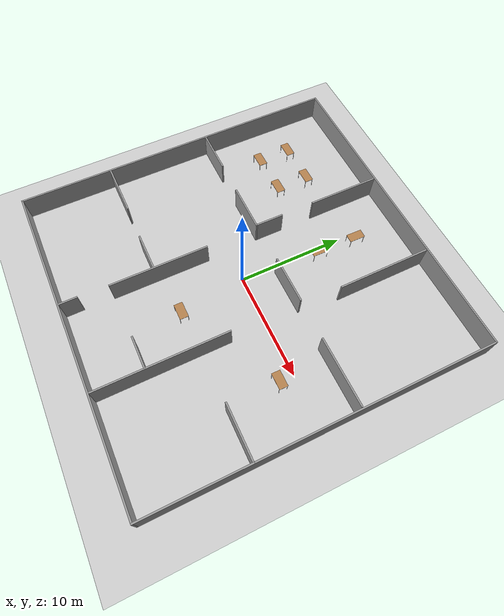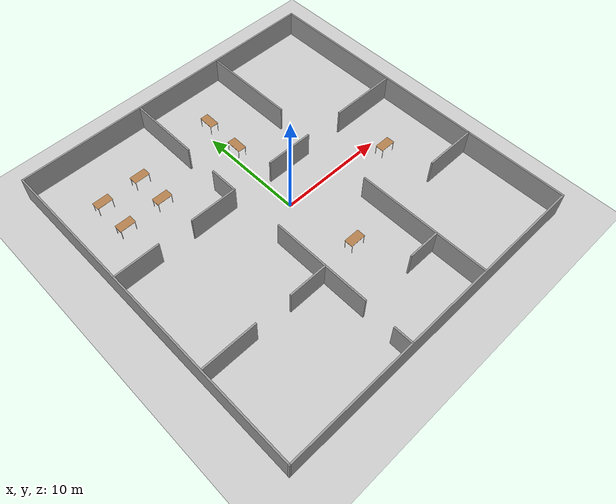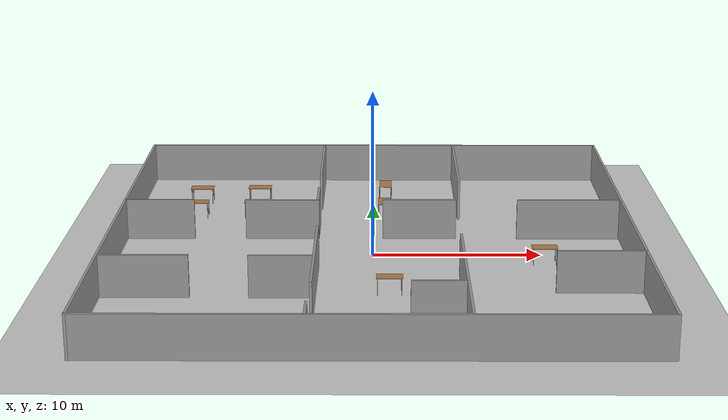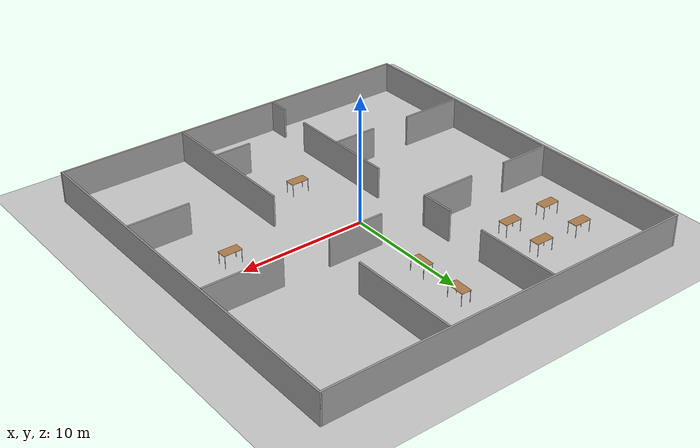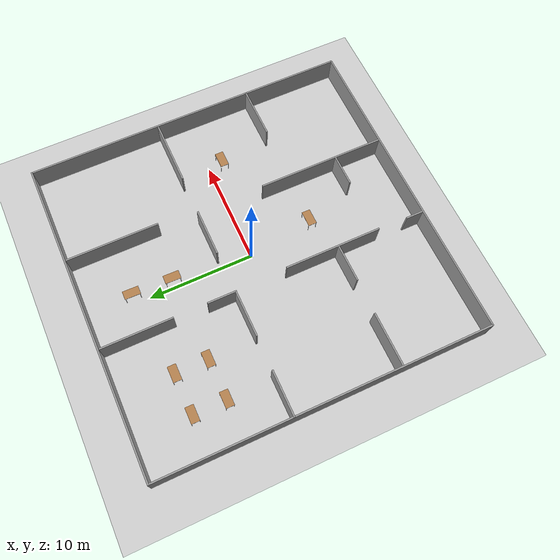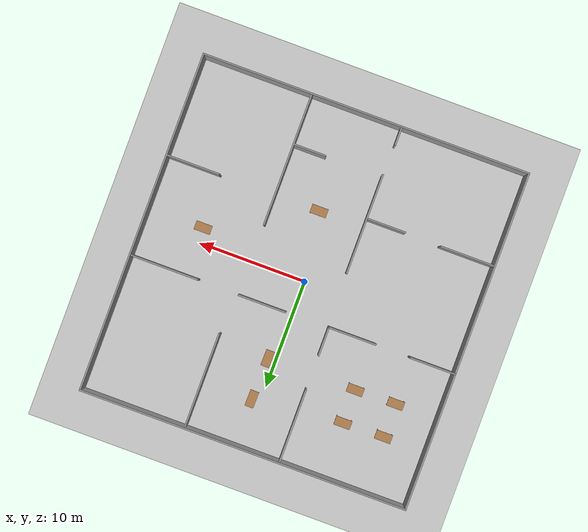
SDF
<sdf version="1.7">
 <world name="default">
  <light name="sun" type="directional">
   <pose>0 0 10 0 -0 0</pose>
   <diffuse>0.8 0.8 0.8 1</diffuse>
   <specular>0.2 0.2 0.2 1</specular>
   <attenuation>
    <range>1000</range>
    <constant>0.9</constant>
    <linear>0.01</linear>
    <quadratic>0.001</quadratic>
   </attenuation>
   <direction>-0.5 0.1 -0.9</direction>
   <spot><inner_angle>0</inner_angle><outer_angle>0</outer_angle><falloff>0</falloff></spot>
  </light>
  <model name="ground_plane">
   <static>1</static>
   <link name="link">
    <collision name="collision">
     <geometry><plane><normal>0 0 1</normal><size>100 100</size></plane></geometry>
     <surface>
      <contact><collide_bitmask>65535</collide_bitmask></contact>
      <friction><ode><mu>100</mu><mu2>50</mu2></ode></friction>
     </surface>
    </collision>
    <visual name="visual">
     <cast_shadows>0</cast_shadows>
     <geometry><plane><normal>0 0 1</normal><size>100 100</size></plane></geometry>
     <material>
      <script><uri>file://media/materials/scripts/gazebo.material</uri><name>Gazebo/Grey</name></script>
     </material>
    </visual>
   </link>
  </model>
  <gravity>0 0 -9.8</gravity>
  <magnetic_field>6e-06 2.3e-05 -4.2e-05</magnetic_field>
  <atmosphere type="adiabatic"/>
  <physics type="ode">
   <max_step_size>0.001</max_step_size>
   <real_time_factor>1</real_time_factor>
   <real_time_update_rate>1000</real_time_update_rate>
  </physics>
  <scene><ambient>0.4 0.4 0.4 1</ambient><background>0.7 0.7 0.7 1</background><shadows>1</shadows></scene>
  <audio><device>default</device></audio>
  <spherical_coordinates>
   <surface_model>EARTH_WGS84</surface_model>
   <latitude_deg>0</latitude_deg>
   <longitude_deg>0</longitude_deg>
   <elevation>0</elevation>
   <heading_deg>0</heading_deg>
  </spherical_coordinates>
  <model name="study">
   <link name="Wall_0">
    <collision name="Wall_0_Collision">
     <geometry><box><size>30.5 0.15 2.5</size></box></geometry>
     <pose>0 0 1.25 0 -0 0</pose>
    </collision>
    <visual name="Wall_0_Visual">
     <pose>0 0 1.25 0 -0 0</pose>
     <geometry><box><size>30.5 0.15 2.5</size></box></geometry>
     <material>
      <script><uri>file://media/materials/scripts/gazebo.material</uri><name>Gazebo/Grey</name></script>
      <ambient>1 1 1 1</ambient>
     </material>
     <meta><layer>0</layer></meta>
    </visual>
    <pose>0 15.675 0 0 -0 0</pose>
   </link>
   <link name="Wall_1">
    <collision name="Wall_1_Collision">
     <geometry><box><size>31.5 0.15 2.5</size></box></geometry>
     <pose>0 0 1.25 0 -0 0</pose>
    </collision>
    <visual name="Wall_1_Visual">
     <pose>0 0 1.25 0 -0 0</pose>
     <geometry><box><size>31.5 0.15 2.5</size></box></geometry>
     <material>
      <script><uri>file://media/materials/scripts/gazebo.material</uri><name>Gazebo/Grey</name></script>
      <ambient>1 1 1 1</ambient>
     </material>
     <meta><layer>0</layer></meta>
    </visual>
    <pose>15.175 -0 0 0 -0 -1.5708</pose>
   </link>
   <link name="Wall_10">
    <collision name="Wall_10_Collision">
     <geometry><box><size>4.25 0.15 2.5</size></box></geometry>
     <pose>0 0 1.25 0 -0 0</pose>
    </collision>
    <visual name="Wall_10_Visual">
     <pose>0 0 1.25 0 -0 0</pose>
     <geometry><box><size>4.25 0.15 2.5</size></box></geometry>
     <material>
      <script><uri>file://media/materials/scripts/gazebo.material</uri><name>Gazebo/Grey</name></script>
      <ambient>1 1 1 1</ambient>
     </material>
     <meta><layer>0</layer></meta>
    </visual>
    <pose>-13.0898 3.04582 0 0 -0 0</pose>
   </link>
   <link name="Wall_12">
    <collision name="Wall_12_Collision">
     <geometry><box><size>4.5 0.15 2.5</size></box></geometry>
     <pose>0 0 1.25 0 -0 0</pose>
    </collision>
    <visual name="Wall_12_Visual">
     <pose>0 0 1.25 0 -0 0</pose>
     <geometry><box><size>4.5 0.15 2.5</size></box></geometry>
     <material>
      <script><uri>file://media/materials/scripts/gazebo.material</uri><name>Gazebo/Grey</name></script>
      <ambient>1 1 1 1</ambient>
     </material>
     <meta><layer>0</layer></meta>
    </visual>
    <pose>2.83044 3.081 0 0 -0 0</pose>
   </link>
   <link name="Wall_14">
    <collision name="Wall_14_Collision">
     <geometry><box><size>6.25 0.15 2.5</size></box></geometry>
     <pose>0 0 1.25 0 -0 0</pose>
    </collision>
    <visual name="Wall_14_Visual">
     <pose>0 0 1.25 0 -0 0</pose>
     <geometry><box><size>6.25 0.15 2.5</size></box></geometry>
     <material>
      <script><uri>file://media/materials/scripts/gazebo.material</uri><name>Gazebo/Grey</name></script>
      <ambient>1 1 1 1</ambient>
     </material>
     <meta><layer>0</layer></meta>
    </visual>
    <pose>11.9373 3.04582 0 0 -0 0</pose>
   </link>
   <link name="Wall_16">
    <collision name="Wall_16_Collision">
     <geometry><box><size>5 0.15 2.5</size></box></geometry>
     <pose>0 0 1.25 0 -0 0</pose>
    </collision>
    <visual name="Wall_16_Visual">
     <pose>0 0 1.25 0 -0 0</pose>
     <geometry><box><size>5 0.15 2.5</size></box></geometry>
     <material>
      <script><uri>file://media/materials/scripts/gazebo.material</uri><name>Gazebo/Grey</name></script>
      <ambient>1 1 1 1</ambient>
     </material>
     <meta><layer>0</layer></meta>
    </visual>
    <pose>-12.6093 -7.0153 0 0 -0 0</pose>
   </link>
   <link name="Wall_18">
    <collision name="Wall_18_Collision">
     <geometry><box><size>3.604 0.15 2.5</size></box></geometry>
     <pose>0 0 1.25 0 -0 0</pose>
    </collision>
    <visual name="Wall_18_Visual">
     <pose>0 0 1.25 0 -0 0</pose>
     <geometry><box><size>3.604 0.15 2.5</size></box></geometry>
     <material>
      <script><uri>file://media/materials/scripts/gazebo.material</uri><name>Gazebo/Grey</name></script>
      <ambient>1 1 1 1</ambient>
     </material>
     <meta><layer>0</layer></meta>
    </visual>
    <pose>-5.04028 -7.08345 0 0 -0 0.001282</pose>
   </link>
   <link name="Wall_2">
    <collision name="Wall_2_Collision">
     <geometry><box><size>30.5 0.15 2.5</size></box></geometry>
     <pose>0 0 1.25 0 -0 0</pose>
    </collision>
    <visual name="Wall_2_Visual">
     <pose>0 0 1.25 0 -0 0</pose>
     <geometry><box><size>30.5 0.15 2.5</size></box></geometry>
     <material>
      <script><uri>file://media/materials/scripts/gazebo.material</uri><name>Gazebo/Grey</name></script>
      <ambient>1 1 1 1</ambient>
     </material>
     <meta><layer>0</layer></meta>
    </visual>
    <pose>0 -15.675 0 0 -0 3.14159</pose>
   </link>
   <link name="Wall_20">
    <collision name="Wall_20_Collision">
     <geometry><box><size>9.25 0.15 2.5</size></box></geometry>
     <pose>0 0 1.25 0 -0 0</pose>
    </collision>
    <visual name="Wall_20_Visual">
     <pose>0 0 1.25 0 -0 0</pose>
     <geometry><box><size>9.25 0.15 2.5</size></box></geometry>
     <material>
      <script><uri>file://media/materials/scripts/gazebo.material</uri><name>Gazebo/Grey</name></script>
      <ambient>1 1 1 1</ambient>
     </material>
     <meta><layer>0</layer></meta>
    </visual>
    <pose>-3.21422 -6.56992 0 0 -0 -1.5708</pose>
   </link>
   <link name="Wall_25">
    <collision name="Wall_25_Collision">
     <geometry><box><size>1.75 0.15 2.5</size></box></geometry>
     <pose>0 0 1.25 0 -0 0</pose>
    </collision>
    <visual name="Wall_25_Visual">
     <pose>0 0 1.25 0 -0 0</pose>
     <geometry><box><size>1.75 0.15 2.5</size></box></geometry>
     <material>
      <script><uri>file://media/materials/scripts/gazebo.material</uri><name>Gazebo/Grey</name></script>
      <ambient>1 1 1 1</ambient>
     </material>
     <meta><layer>0</layer></meta>
    </visual>
    <pose>-3.32253 -14.8206 0 0 -0 1.5708</pose>
   </link>
   <link name="Wall_27">
    <collision name="Wall_27_Collision">
     <geometry><box><size>12.25 0.15 2.5</size></box></geometry>
     <pose>0 0 1.25 0 -0 0</pose>
    </collision>
    <visual name="Wall_27_Visual">
     <pose>0 0 1.25 0 -0 0</pose>
     <geometry><box><size>12.25 0.15 2.5</size></box></geometry>
     <material>
      <script><uri>file://media/materials/scripts/gazebo.material</uri><name>Gazebo/Grey</name></script>
      <ambient>1 1 1 1</ambient>
     </material>
     <meta><layer>0</layer></meta>
    </visual>
    <pose>5.05747 -9.53064 0 0 -0 1.5708</pose>
   </link>
   <link name="Wall_29">
    <collision name="Wall_29_Collision">
     <geometry><box><size>8.75 0.15 2.5</size></box></geometry>
     <pose>0 0 1.25 0 -0 0</pose>
    </collision>
    <visual name="Wall_29_Visual">
     <pose>0 0 1.25 0 -0 0</pose>
     <geometry><box><size>8.75 0.15 2.5</size></box></geometry>
     <material>
      <script><uri>file://media/materials/scripts/gazebo.material</uri><name>Gazebo/Grey</name></script>
      <ambient>1 1 1 1</ambient>
     </material>
     <meta><layer>0</layer></meta>
    </visual>
    <pose>5.43881 11.1887 0 0 -0 -1.5708</pose>
   </link>
   <link name="Wall_3">
    <collision name="Wall_3_Collision">
     <geometry><box><size>31.5 0.15 2.5</size></box></geometry>
     <pose>0 0 1.25 0 -0 0</pose>
    </collision>
    <visual name="Wall_3_Visual">
     <pose>0 0 1.25 0 -0 0</pose>
     <geometry><box><size>31.5 0.15 2.5</size></box></geometry>
     <material>
      <script><uri>file://media/materials/scripts/gazebo.material</uri><name>Gazebo/Grey</name></script>
      <ambient>1 1 1 1</ambient>
     </material>
     <meta><layer>0</layer></meta>
    </visual>
    <pose>-15.175 -0 0 0 -0 1.5708</pose>
   </link>
   <link name="Wall_31">
    <collision name="Wall_31_Collision">
     <geometry><box><size>5 0.15 2.5</size></box></geometry>
     <pose>0 0 1.25 0 -0 0</pose>
    </collision>
    <visual name="Wall_31_Visual">
     <pose>0 0 1.25 0 -0 0</pose>
     <geometry><box><size>5 0.15 2.5</size></box></geometry>
     <material>
      <script><uri>file://media/materials/scripts/gazebo.material</uri><name>Gazebo/Grey</name></script>
      <ambient>1 1 1 1</ambient>
     </material>
     <meta><layer>0</layer></meta>
    </visual>
    <pose>12.7212 -6.25406 0 0 -0 0</pose>
   </link>
   <link name="Wall_33">
    <collision name="Wall_33_Collision">
     <geometry><box><size>3 0.15 2.5</size></box></geometry>
     <pose>0 0 1.25 0 -0 0</pose>
    </collision>
    <visual name="Wall_33_Visual">
     <pose>0 0 1.25 0 -0 0</pose>
     <geometry><box><size>3 0.15 2.5</size></box></geometry>
     <material>
      <script><uri>file://media/materials/scripts/gazebo.material</uri><name>Gazebo/Grey</name></script>
      <ambient>1 1 1 1</ambient>
     </material>
     <meta><layer>0</layer></meta>
    </visual>
    <pose>3.533 -10.9727 0 0 -0 0</pose>
   </link>
   <link name="Wall_5">
    <collision name="Wall_5_Collision">
     <geometry><box><size>6.75 0.15 2.5</size></box></geometry>
     <pose>0 0 1.25 0 -0 0</pose>
    </collision>
    <visual name="Wall_5_Visual">
     <pose>0 0 1.25 0 -0 0</pose>
     <geometry><box><size>6.75 0.15 2.5</size></box></geometry>
     <material>
      <script><uri>file://media/materials/scripts/gazebo.material</uri><name>Gazebo/Grey</name></script>
      <ambient>1 1 1 1</ambient>
     </material>
     <meta><layer>0</layer></meta>
    </visual>
    <pose>-3.39011 12.1991 0 0 -0 -1.5708</pose>
   </link>
   <link name="Wall_7">
    <collision name="Wall_7_Collision">
     <geometry><box><size>2.75 0.15 2.5</size></box></geometry>
     <pose>0 0 1.25 0 -0 0</pose>
    </collision>
    <visual name="Wall_7_Visual">
     <pose>0 0 1.25 0 -0 0</pose>
     <geometry><box><size>2.75 0.15 2.5</size></box></geometry>
     <material>
      <script><uri>file://media/materials/scripts/gazebo.material</uri><name>Gazebo/Grey</name></script>
      <ambient>1 1 1 1</ambient>
     </material>
     <meta><layer>0</layer></meta>
    </visual>
    <pose>-3.39011 4.31387 0 0 -0 -1.5708</pose>
   </link>
   <link name="Wall_8">
    <collision name="Wall_8_Collision">
     <geometry><box><size>4.5 0.15 2.5</size></box></geometry>
     <pose>0 0 1.25 0 -0 0</pose>
    </collision>
    <visual name="Wall_8_Visual">
     <pose>0 0 1.25 0 -0 0</pose>
     <geometry><box><size>4.5 0.15 2.5</size></box></geometry>
     <material>
      <script><uri>file://media/materials/scripts/gazebo.material</uri><name>Gazebo/Grey</name></script>
      <ambient>1 1 1 1</ambient>
     </material>
     <meta><layer>0</layer></meta>
    </visual>
    <pose>-5.56511 3.01387 0 0 -0 3.14159</pose>
   </link>
   <static>1</static>
  </model>
  <model name="table">
   <static>1</static>
   <link name="link">
    <collision name="surface">
     <pose>0 0 1 0 -0 0</pose>
     <geometry><box><size>1.5 0.8 0.03</size></box></geometry>
     <surface><friction><ode><mu>0.6</mu><mu2>0.6</mu2></ode></friction></surface>
    </collision>
    <visual name="visual1">
     <pose>0 0 1 0 -0 0</pose>
     <geometry><box><size>1.5 0.8 0.03</size></box></geometry>
     <material>
      <script><uri>file://media/materials/scripts/gazebo.material</uri><name>Gazebo/Wood</name></script>
     </material>
    </visual>
    <collision name="front_left_leg">
     <pose>0.68 0.38 0.5 0 -0 0</pose>
     <geometry><cylinder><radius>0.02</radius><length>1</length></cylinder></geometry>
    </collision>
    <visual name="front_left_leg_visual">
     <pose>0.68 0.38 0.5 0 -0 0</pose>
     <geometry><cylinder><radius>0.02</radius><length>1</length></cylinder></geometry>
     <material>
      <script><uri>file://media/materials/scripts/gazebo.material</uri><name>Gazebo/Grey</name></script>
     </material>
    </visual>
    <collision name="front_right_leg">
     <pose>0.68 -0.38 0.5 0 -0 0</pose>
     <geometry><cylinder><radius>0.02</radius><length>1</length></cylinder></geometry>
    </collision>
    <visual name="front_right_leg_visual">
     <pose>0.68 -0.38 0.5 0 -0 0</pose>
     <geometry><cylinder><radius>0.02</radius><length>1</length></cylinder></geometry>
     <material>
      <script><uri>file://media/materials/scripts/gazebo.material</uri><name>Gazebo/Grey</name></script>
     </material>
    </visual>
    <collision name="back_right_leg">
     <pose>-0.68 -0.38 0.5 0 -0 0</pose>
     <geometry><cylinder><radius>0.02</radius><length>1</length></cylinder></geometry>
    </collision>
    <visual name="back_right_leg_visual">
     <pose>-0.68 -0.38 0.5 0 -0 0</pose>
     <geometry><cylinder><radius>0.02</radius><length>1</length></cylinder></geometry>
     <material>
      <script><uri>file://media/materials/scripts/gazebo.material</uri><name>Gazebo/Grey</name></script>
     </material>
    </visual>
    <collision name="back_left_leg">
     <pose>-0.68 0.38 0.5 0 -0 0</pose>
     <geometry><cylinder><radius>0.02</radius><length>1</length></cylinder></geometry>
    </collision>
    <visual name="back_left_leg_visual">
     <pose>-0.68 0.38 0.5 0 -0 0</pose>
     <geometry><cylinder><radius>0.02</radius><length>1</length></cylinder></geometry>
     <material>
      <script><uri>file://media/materials/scripts/gazebo.material</uri><name>Gazebo/Grey</name></script>
     </material>
    </visual>
   </link>
   <pose>-11.3135 10.4731 0 0 -0 0</pose>
  </model>
  <model name="table_0">
   <static>1</static>
   <link name="link">
    <collision name="surface">
     <pose>0 0 1 0 -0 0</pose>
     <geometry><box><size>1.5 0.8 0.03</size></box></geometry>
     <surface><friction><ode><mu>0.6</mu><mu2>0.6</mu2></ode></friction></surface>
    </collision>
    <visual name="visual1">
     <pose>0 0 1 0 -0 0</pose>
     <geometry><box><size>1.5 0.8 0.03</size></box></geometry>
     <material>
      <script><uri>file://media/materials/scripts/gazebo.material</uri><name>Gazebo/Wood</name></script>
     </material>
    </visual>
    <collision name="front_left_leg">
     <pose>0.68 0.38 0.5 0 -0 0</pose>
     <geometry><cylinder><radius>0.02</radius><length>1</length></cylinder></geometry>
    </collision>
    <visual name="front_left_leg_visual">
     <pose>0.68 0.38 0.5 0 -0 0</pose>
     <geometry><cylinder><radius>0.02</radius><length>1</length></cylinder></geometry>
     <material>
      <script><uri>file://media/materials/scripts/gazebo.material</uri><name>Gazebo/Grey</name></script>
     </material>
    </visual>
    <collision name="front_right_leg">
     <pose>0.68 -0.38 0.5 0 -0 0</pose>
     <geometry><cylinder><radius>0.02</radius><length>1</length></cylinder></geometry>
    </collision>
    <visual name="front_right_leg_visual">
     <pose>0.68 -0.38 0.5 0 -0 0</pose>
     <geometry><cylinder><radius>0.02</radius><length>1</length></cylinder></geometry>
     <material>
      <script><uri>file://media/materials/scripts/gazebo.material</uri><name>Gazebo/Grey</name></script>
     </material>
    </visual>
    <collision name="back_right_leg">
     <pose>-0.68 -0.38 0.5 0 -0 0</pose>
     <geometry><cylinder><radius>0.02</radius><length>1</length></cylinder></geometry>
    </collision>
    <visual name="back_right_leg_visual">
     <pose>-0.68 -0.38 0.5 0 -0 0</pose>
     <geometry><cylinder><radius>0.02</radius><length>1</length></cylinder></geometry>
     <material>
      <script><uri>file://media/materials/scripts/gazebo.material</uri><name>Gazebo/Grey</name></script>
     </material>
    </visual>
    <collision name="back_left_leg">
     <pose>-0.68 0.38 0.5 0 -0 0</pose>
     <geometry><cylinder><radius>0.02</radius><length>1</length></cylinder></geometry>
    </collision>
    <visual name="back_left_leg_visual">
     <pose>-0.68 0.38 0.5 0 -0 0</pose>
     <geometry><cylinder><radius>0.02</radius><length>1</length></cylinder></geometry>
     <material>
      <script><uri>file://media/materials/scripts/gazebo.material</uri><name>Gazebo/Grey</name></script>
     </material>
    </visual>
   </link>
   <pose>-7.51149 10.544 0 0 -0 0</pose>
  </model>
  <model name="table_1">
   <static>1</static>
   <link name="link">
    <collision name="surface">
     <pose>0 0 1 0 -0 0</pose>
     <geometry><box><size>1.5 0.8 0.03</size></box></geometry>
     <surface><friction><ode><mu>0.6</mu><mu2>0.6</mu2></ode></friction></surface>
    </collision>
    <visual name="visual1">
     <pose>0 0 1 0 -0 0</pose>
     <geometry><box><size>1.5 0.8 0.03</size></box></geometry>
     <material>
      <script><uri>file://media/materials/scripts/gazebo.material</uri><name>Gazebo/Wood</name></script>
     </material>
    </visual>
    <collision name="front_left_leg">
     <pose>0.68 0.38 0.5 0 -0 0</pose>
     <geometry><cylinder><radius>0.02</radius><length>1</length></cylinder></geometry>
    </collision>
    <visual name="front_left_leg_visual">
     <pose>0.68 0.38 0.5 0 -0 0</pose>
     <geometry><cylinder><radius>0.02</radius><length>1</length></cylinder></geometry>
     <material>
      <script><uri>file://media/materials/scripts/gazebo.material</uri><name>Gazebo/Grey</name></script>
     </material>
    </visual>
    <collision name="front_right_leg">
     <pose>0.68 -0.38 0.5 0 -0 0</pose>
     <geometry><cylinder><radius>0.02</radius><length>1</length></cylinder></geometry>
    </collision>
    <visual name="front_right_leg_visual">
     <pose>0.68 -0.38 0.5 0 -0 0</pose>
     <geometry><cylinder><radius>0.02</radius><length>1</length></cylinder></geometry>
     <material>
      <script><uri>file://media/materials/scripts/gazebo.material</uri><name>Gazebo/Grey</name></script>
     </material>
    </visual>
    <collision name="back_right_leg">
     <pose>-0.68 -0.38 0.5 0 -0 0</pose>
     <geometry><cylinder><radius>0.02</radius><length>1</length></cylinder></geometry>
    </collision>
    <visual name="back_right_leg_visual">
     <pose>-0.68 -0.38 0.5 0 -0 0</pose>
     <geometry><cylinder><radius>0.02</radius><length>1</length></cylinder></geometry>
     <material>
      <script><uri>file://media/materials/scripts/gazebo.material</uri><name>Gazebo/Grey</name></script>
     </material>
    </visual>
    <collision name="back_left_leg">
     <pose>-0.68 0.38 0.5 0 -0 0</pose>
     <geometry><cylinder><radius>0.02</radius><length>1</length></cylinder></geometry>
    </collision>
    <visual name="back_left_leg_visual">
     <pose>-0.68 0.38 0.5 0 -0 0</pose>
     <geometry><cylinder><radius>0.02</radius><length>1</length></cylinder></geometry>
     <material>
      <script><uri>file://media/materials/scripts/gazebo.material</uri><name>Gazebo/Grey</name></script>
     </material>
    </visual>
   </link>
   <pose>-11.313 7.35243 0 0 -0 0</pose>
  </model>
  <model name="table_2">
   <static>1</static>
   <link name="link">
    <collision name="surface">
     <pose>0 0 1 0 -0 0</pose>
     <geometry><box><size>1.5 0.8 0.03</size></box></geometry>
     <surface><friction><ode><mu>0.6</mu><mu2>0.6</mu2></ode></friction></surface>
    </collision>
    <visual name="visual1">
     <pose>0 0 1 0 -0 0</pose>
     <geometry><box><size>1.5 0.8 0.03</size></box></geometry>
     <material>
      <script><uri>file://media/materials/scripts/gazebo.material</uri><name>Gazebo/Wood</name></script>
     </material>
    </visual>
    <collision name="front_left_leg">
     <pose>0.68 0.38 0.5 0 -0 0</pose>
     <geometry><cylinder><radius>0.02</radius><length>1</length></cylinder></geometry>
    </collision>
    <visual name="front_left_leg_visual">
     <pose>0.68 0.38 0.5 0 -0 0</pose>
     <geometry><cylinder><radius>0.02</radius><length>1</length></cylinder></geometry>
     <material>
      <script><uri>file://media/materials/scripts/gazebo.material</uri><name>Gazebo/Grey</name></script>
     </material>
    </visual>
    <collision name="front_right_leg">
     <pose>0.68 -0.38 0.5 0 -0 0</pose>
     <geometry><cylinder><radius>0.02</radius><length>1</length></cylinder></geometry>
    </collision>
    <visual name="front_right_leg_visual">
     <pose>0.68 -0.38 0.5 0 -0 0</pose>
     <geometry><cylinder><radius>0.02</radius><length>1</length></cylinder></geometry>
     <material>
      <script><uri>file://media/materials/scripts/gazebo.material</uri><name>Gazebo/Grey</name></script>
     </material>
    </visual>
    <collision name="back_right_leg">
     <pose>-0.68 -0.38 0.5 0 -0 0</pose>
     <geometry><cylinder><radius>0.02</radius><length>1</length></cylinder></geometry>
    </collision>
    <visual name="back_right_leg_visual">
     <pose>-0.68 -0.38 0.5 0 -0 0</pose>
     <geometry><cylinder><radius>0.02</radius><length>1</length></cylinder></geometry>
     <material>
      <script><uri>file://media/materials/scripts/gazebo.material</uri><name>Gazebo/Grey</name></script>
     </material>
    </visual>
    <collision name="back_left_leg">
     <pose>-0.68 0.38 0.5 0 -0 0</pose>
     <geometry><cylinder><radius>0.02</radius><length>1</length></cylinder></geometry>
    </collision>
    <visual name="back_left_leg_visual">
     <pose>-0.68 0.38 0.5 0 -0 0</pose>
     <geometry><cylinder><radius>0.02</radius><length>1</length></cylinder></geometry>
     <material>
      <script><uri>file://media/materials/scripts/gazebo.material</uri><name>Gazebo/Grey</name></script>
     </material>
    </visual>
   </link>
   <pose>-7.53214 7.43757 0 0 -0 0</pose>
  </model>
  <model name="table_3">
   <static>1</static>
   <link name="link">
    <collision name="surface">
     <pose>0 0 1 0 -0 0</pose>
     <geometry><box><size>1.5 0.8 0.03</size></box></geometry>
     <surface><friction><ode><mu>0.6</mu><mu2>0.6</mu2></ode></friction></surface>
    </collision>
    <visual name="visual1">
     <pose>0 0 1 0 -0 0</pose>
     <geometry><box><size>1.5 0.8 0.03</size></box></geometry>
     <material>
      <script><uri>file://media/materials/scripts/gazebo.material</uri><name>Gazebo/Wood</name></script>
     </material>
    </visual>
    <collision name="front_left_leg">
     <pose>0.68 0.38 0.5 0 -0 0</pose>
     <geometry><cylinder><radius>0.02</radius><length>1</length></cylinder></geometry>
    </collision>
    <visual name="front_left_leg_visual">
     <pose>0.68 0.38 0.5 0 -0 0</pose>
     <geometry><cylinder><radius>0.02</radius><length>1</length></cylinder></geometry>
     <material>
      <script><uri>file://media/materials/scripts/gazebo.material</uri><name>Gazebo/Grey</name></script>
     </material>
    </visual>
    <collision name="front_right_leg">
     <pose>0.68 -0.38 0.5 0 -0 0</pose>
     <geometry><cylinder><radius>0.02</radius><length>1</length></cylinder></geometry>
    </collision>
    <visual name="front_right_leg_visual">
     <pose>0.68 -0.38 0.5 0 -0 0</pose>
     <geometry><cylinder><radius>0.02</radius><length>1</length></cylinder></geometry>
     <material>
      <script><uri>file://media/materials/scripts/gazebo.material</uri><name>Gazebo/Grey</name></script>
     </material>
    </visual>
    <collision name="back_right_leg">
     <pose>-0.68 -0.38 0.5 0 -0 0</pose>
     <geometry><cylinder><radius>0.02</radius><length>1</length></cylinder></geometry>
    </collision>
    <visual name="back_right_leg_visual">
     <pose>-0.68 -0.38 0.5 0 -0 0</pose>
     <geometry><cylinder><radius>0.02</radius><length>1</length></cylinder></geometry>
     <material>
      <script><uri>file://media/materials/scripts/gazebo.material</uri><name>Gazebo/Grey</name></script>
     </material>
    </visual>
    <collision name="back_left_leg">
     <pose>-0.68 0.38 0.5 0 -0 0</pose>
     <geometry><cylinder><radius>0.02</radius><length>1</length></cylinder></geometry>
    </collision>
    <visual name="back_left_leg_visual">
     <pose>-0.68 0.38 0.5 0 -0 0</pose>
     <geometry><cylinder><radius>0.02</radius><length>1</length></cylinder></geometry>
     <material>
      <script><uri>file://media/materials/scripts/gazebo.material</uri><name>Gazebo/Grey</name></script>
     </material>
    </visual>
   </link>
   <pose>0.794536 11.3446 0 0 0 -1.58819</pose>
  </model>
  <model name="table_3_clone">
   <static>1</static>
   <link name="link">
    <collision name="surface">
     <pose>0 0 1 0 -0 0</pose>
     <geometry><box><size>1.5 0.8 0.03</size></box></geometry>
     <surface><friction><ode><mu>0.6</mu><mu2>0.6</mu2></ode></friction></surface>
    </collision>
    <visual name="visual1">
     <pose>0 0 1 0 -0 0</pose>
     <geometry><box><size>1.5 0.8 0.03</size></box></geometry>
     <material>
      <script><uri>file://media/materials/scripts/gazebo.material</uri><name>Gazebo/Wood</name></script>
     </material>
    </visual>
    <collision name="front_left_leg">
     <pose>0.68 0.38 0.5 0 -0 0</pose>
     <geometry><cylinder><radius>0.02</radius><length>1</length></cylinder></geometry>
    </collision>
    <visual name="front_left_leg_visual">
     <pose>0.68 0.38 0.5 0 -0 0</pose>
     <geometry><cylinder><radius>0.02</radius><length>1</length></cylinder></geometry>
     <material>
      <script><uri>file://media/materials/scripts/gazebo.material</uri><name>Gazebo/Grey</name></script>
     </material>
    </visual>
    <collision name="front_right_leg">
     <pose>0.68 -0.38 0.5 0 -0 0</pose>
     <geometry><cylinder><radius>0.02</radius><length>1</length></cylinder></geometry>
    </collision>
    <visual name="front_right_leg_visual">
     <pose>0.68 -0.38 0.5 0 -0 0</pose>
     <geometry><cylinder><radius>0.02</radius><length>1</length></cylinder></geometry>
     <material>
      <script><uri>file://media/materials/scripts/gazebo.material</uri><name>Gazebo/Grey</name></script>
     </material>
    </visual>
    <collision name="back_right_leg">
     <pose>-0.68 -0.38 0.5 0 -0 0</pose>
     <geometry><cylinder><radius>0.02</radius><length>1</length></cylinder></geometry>
    </collision>
    <visual name="back_right_leg_visual">
     <pose>-0.68 -0.38 0.5 0 -0 0</pose>
     <geometry><cylinder><radius>0.02</radius><length>1</length></cylinder></geometry>
     <material>
      <script><uri>file://media/materials/scripts/gazebo.material</uri><name>Gazebo/Grey</name></script>
     </material>
    </visual>
    <collision name="back_left_leg">
     <pose>-0.68 0.38 0.5 0 -0 0</pose>
     <geometry><cylinder><radius>0.02</radius><length>1</length></cylinder></geometry>
    </collision>
    <visual name="back_left_leg_visual">
     <pose>-0.68 0.38 0.5 0 -0 0</pose>
     <geometry><cylinder><radius>0.02</radius><length>1</length></cylinder></geometry>
     <material>
      <script><uri>file://media/materials/scripts/gazebo.material</uri><name>Gazebo/Grey</name></script>
     </material>
    </visual>
   </link>
   <pose>0.704578 7.50679 0 0 0 -1.58819</pose>
  </model>
  <model name="table_4">
   <static>1</static>
   <link name="link">
    <collision name="surface">
     <pose>0 0 1 0 -0 0</pose>
     <geometry><box><size>1.5 0.8 0.03</size></box></geometry>
     <surface><friction><ode><mu>0.6</mu><mu2>0.6</mu2></ode></friction></surface>
    </collision>
    <visual name="visual1">
     <pose>0 0 1 0 -0 0</pose>
     <geometry><box><size>1.5 0.8 0.03</size></box></geometry>
     <material>
      <script><uri>file://media/materials/scripts/gazebo.material</uri><name>Gazebo/Wood</name></script>
     </material>
    </visual>
    <collision name="front_left_leg">
     <pose>0.68 0.38 0.5 0 -0 0</pose>
     <geometry><cylinder><radius>0.02</radius><length>1</length></cylinder></geometry>
    </collision>
    <visual name="front_left_leg_visual">
     <pose>0.68 0.38 0.5 0 -0 0</pose>
     <geometry><cylinder><radius>0.02</radius><length>1</length></cylinder></geometry>
     <material>
      <script><uri>file://media/materials/scripts/gazebo.material</uri><name>Gazebo/Grey</name></script>
     </material>
    </visual>
    <collision name="front_right_leg">
     <pose>0.68 -0.38 0.5 0 -0 0</pose>
     <geometry><cylinder><radius>0.02</radius><length>1</length></cylinder></geometry>
    </collision>
    <visual name="front_right_leg_visual">
     <pose>0.68 -0.38 0.5 0 -0 0</pose>
     <geometry><cylinder><radius>0.02</radius><length>1</length></cylinder></geometry>
     <material>
      <script><uri>file://media/materials/scripts/gazebo.material</uri><name>Gazebo/Grey</name></script>
     </material>
    </visual>
    <collision name="back_right_leg">
     <pose>-0.68 -0.38 0.5 0 -0 0</pose>
     <geometry><cylinder><radius>0.02</radius><length>1</length></cylinder></geometry>
    </collision>
    <visual name="back_right_leg_visual">
     <pose>-0.68 -0.38 0.5 0 -0 0</pose>
     <geometry><cylinder><radius>0.02</radius><length>1</length></cylinder></geometry>
     <material>
      <script><uri>file://media/materials/scripts/gazebo.material</uri><name>Gazebo/Grey</name></script>
     </material>
    </visual>
    <collision name="back_left_leg">
     <pose>-0.68 0.38 0.5 0 -0 0</pose>
     <geometry><cylinder><radius>0.02</radius><length>1</length></cylinder></geometry>
    </collision>
    <visual name="back_left_leg_visual">
     <pose>-0.68 0.38 0.5 0 -0 0</pose>
     <geometry><cylinder><radius>0.02</radius><length>1</length></cylinder></geometry>
     <material>
      <script><uri>file://media/materials/scripts/gazebo.material</uri><name>Gazebo/Grey</name></script>
     </material>
    </visual>
   </link>
   <pose>10.082 -1.41051 0 0 -0 0</pose>
  </model>
  <model name="table_5">
   <static>1</static>
   <link name="link">
    <collision name="surface">
     <pose>0 0 1 0 -0 0</pose>
     <geometry><box><size>1.5 0.8 0.03</size></box></geometry>
     <surface><friction><ode><mu>0.6</mu><mu2>0.6</mu2></ode></friction></surface>
    </collision>
    <visual name="visual1">
     <pose>0 0 1 0 -0 0</pose>
     <geometry><box><size>1.5 0.8 0.03</size></box></geometry>
     <material>
      <script><uri>file://media/materials/scripts/gazebo.material</uri><name>Gazebo/Wood</name></script>
     </material>
    </visual>
    <collision name="front_left_leg">
     <pose>0.68 0.38 0.5 0 -0 0</pose>
     <geometry><cylinder><radius>0.02</radius><length>1</length></cylinder></geometry>
    </collision>
    <visual name="front_left_leg_visual">
     <pose>0.68 0.38 0.5 0 -0 0</pose>
     <geometry><cylinder><radius>0.02</radius><length>1</length></cylinder></geometry>
     <material>
      <script><uri>file://media/materials/scripts/gazebo.material</uri><name>Gazebo/Grey</name></script>
     </material>
    </visual>
    <collision name="front_right_leg">
     <pose>0.68 -0.38 0.5 0 -0 0</pose>
     <geometry><cylinder><radius>0.02</radius><length>1</length></cylinder></geometry>
    </collision>
    <visual name="front_right_leg_visual">
     <pose>0.68 -0.38 0.5 0 -0 0</pose>
     <geometry><cylinder><radius>0.02</radius><length>1</length></cylinder></geometry>
     <material>
      <script><uri>file://media/materials/scripts/gazebo.material</uri><name>Gazebo/Grey</name></script>
     </material>
    </visual>
    <collision name="back_right_leg">
     <pose>-0.68 -0.38 0.5 0 -0 0</pose>
     <geometry><cylinder><radius>0.02</radius><length>1</length></cylinder></geometry>
    </collision>
    <visual name="back_right_leg_visual">
     <pose>-0.68 -0.38 0.5 0 -0 0</pose>
     <geometry><cylinder><radius>0.02</radius><length>1</length></cylinder></geometry>
     <material>
      <script><uri>file://media/materials/scripts/gazebo.material</uri><name>Gazebo/Grey</name></script>
     </material>
    </visual>
    <collision name="back_left_leg">
     <pose>-0.68 0.38 0.5 0 -0 0</pose>
     <geometry><cylinder><radius>0.02</radius><length>1</length></cylinder></geometry>
    </collision>
    <visual name="back_left_leg_visual">
     <pose>-0.68 0.38 0.5 0 -0 0</pose>
     <geometry><cylinder><radius>0.02</radius><length>1</length></cylinder></geometry>
     <material>
      <script><uri>file://media/materials/scripts/gazebo.material</uri><name>Gazebo/Grey</name></script>
     </material>
    </visual>
   </link>
   <pose>0.95139 -6.33758 0 0 -0 0</pose>
  </model>
  <plugin name="gazebo_ros_state" filename="libgazebo_ros_state.so">
   <ros><namespace>/gazebo</namespace></ros>
   <update_rate>100.0</update_rate>
  </plugin>
 </world>
</sdf>
